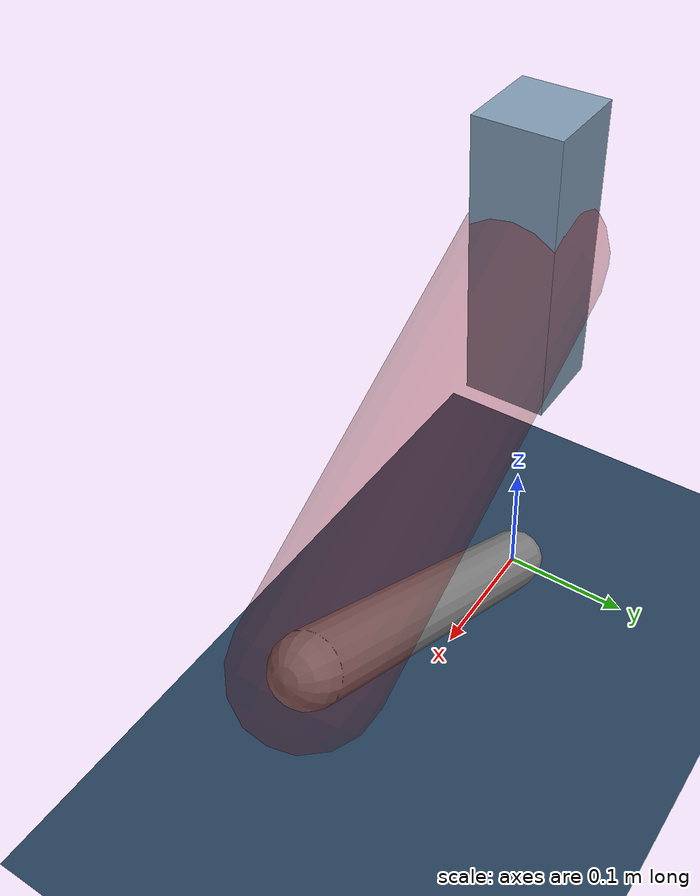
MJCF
<mujoco model="Hopper2D">
	<compiler inertiafromgeom="true" angle="radian" />
	<option timestep="0.001" integrator="implicit" cone="elliptic" solver="Newton" tolerance="1e-10" />

	<default>
		<geom contype="1" conaffinity="1" condim="3" friction="2 0.005 0.0001" solref="0.005 1" />
		<joint limited="true" damping="0.1" />
	</default>

	<asset>
		<texture name="skybox" type="skybox" builtin="gradient" rgb1=".4 .6 .8" rgb2="0 0 0" width="800" height="800" />
		<texture name="grid" type="2d" builtin="checker" rgb1=".1 .2 .3" rgb2=".2 .3 .4" width="300" height="300" mark="edge" markrgb=".2 .3 .4" />
		<material name="ground" texture="grid" texrepeat="1 1" texuniform="true" reflectance="0.1" />
		<material name="leg" rgba="0.5 0.6 0.7 1" />
	</asset>

	<worldbody>

		<geom name="floor" type="plane" size="5 5 0.25" material="ground" />

		<light directional="false" diffuse="0.8 0.8 0.8" specular="0.3 0.3 0.3" pos="0 0 2" dir="0 0 -1" />
		<light mode="targetbodycom" target="base" directional="false" diffuse="0.8 0.8 0.8" specular="0.3 0.3 0.3" pos="0 0 2" dir="0 0 -1" />

		<camera name="fixed" pos="0 -2 1" xyaxes="1 0 0 0 0 1" />
		<camera name="tracking" mode="trackcom" pos="0 -3 1" />

		<body name="root" pos="0 0 0.3">
			<joint name="slide_x" type="slide" axis="1 0 0" range="-100 100" />
			<joint name="slide_z" type="slide" axis="0 0 1" range="0 10" />

			<body name="base" pos="0 0 0">
				<geom name="torso" type="box" size="0.03 0.03 0.1" mass="1.706" material="leg" />

				<body name="link1" pos="0 0 0" euler="0 0.5100759685132856 0">
					<joint type="hinge" axis="0 -1 0" pos="0 0 0" name="hinge1" limited="true" range="-3.14 3.14" stiffness="0" damping="0.1" />
					<geom name="thigh" type="capsule" fromto="0 0 0 0.297 0 0" size="0.05" rgba="0.5 0 0 0.3" mass="0.9806" />

					<body name="link2" pos="0.297 0 0" euler="0 2.0925872792197358 0">
						<joint type="hinge" axis="0 -1 0" pos="0 0 0" name="hinge2" limited="true" range="-3.14 3.14" stiffness="0" damping="0.1" />
						<geom name="shank" type="capsule" fromto="0 0 0 0.302 0 0" size="0.025" mass="0.4851" />

					</body>
				</body>
			</body>
		</body>
	</worldbody>

	<actuator>
		<motor name="torque1" joint="hinge1" ctrlrange="-20.626480624709636 20.626480624709636" ctrllimited="true" gear="1" />
		<motor name="torque2" joint="hinge2" ctrlrange="-28.126268979854057 28.126268979854057" ctrllimited="true" gear="1" />
	</actuator>
</mujoco>
